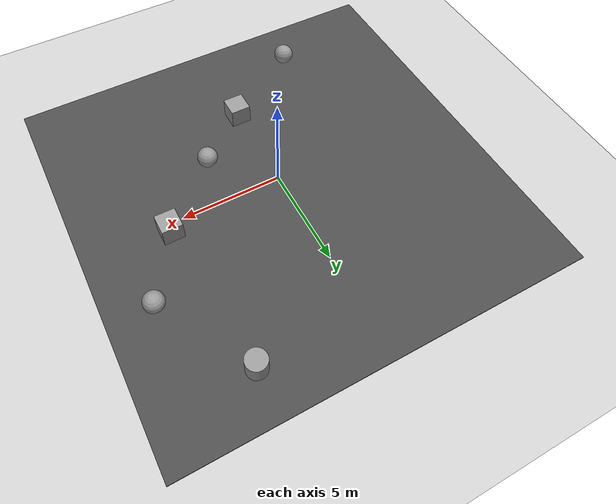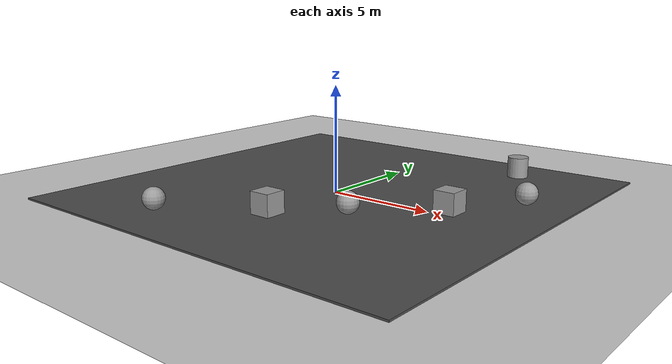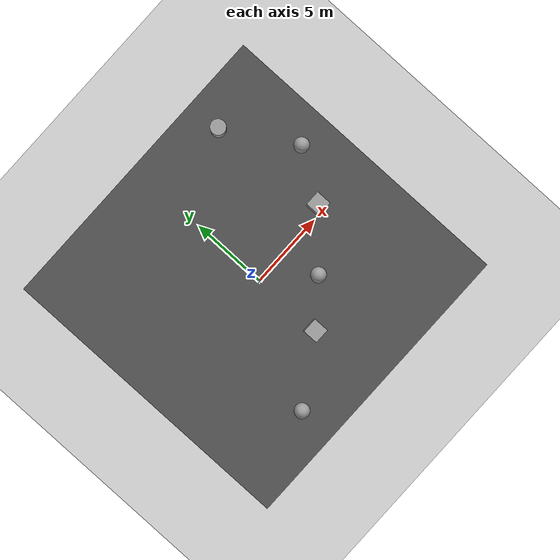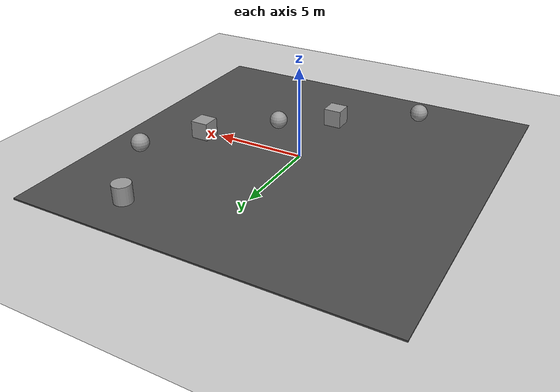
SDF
<sdf version="1.6">
 <world name="default">
  <model name="rad_zone_MPv">
   <static>true</static>
   <pose>5.000 4.000 2.000 0.000 0.000 0.000</pose>
   <frame name="radius"><pose>3.000 0.000 0.000 0.000 0.000 0.000</pose></frame>
  </model>
  <plugin name="gazebo_usar_core" filename="libgazebo_usar_core.so"><robots>Robot1;Robot2</robots></plugin>
  <light name="sun" type="directional">
   <pose>0 0 10 0 -0 0</pose>
   <diffuse>0.8 0.8 0.8 1</diffuse>
   <specular>0.2 0.2 0.2 1</specular>
   <attenuation>
    <range>1000</range>
    <constant>0.9</constant>
    <linear>0.01</linear>
    <quadratic>0.001</quadratic>
   </attenuation>
   <direction>-0.5 0.1 -0.9</direction>
  </light>
  <model name="ground_plane">
   <static>1</static>
   <link name="link">
    <collision name="collision">
     <geometry><plane><normal>0 0 1</normal><size>100 100</size></plane></geometry>
     <surface>
      <contact><collide_bitmask>65535</collide_bitmask></contact>
      <friction><ode><mu>100</mu><mu2>50</mu2></ode></friction>
     </surface>
    </collision>
    <visual name="visual">
     <cast_shadows>0</cast_shadows>
     <geometry><plane><normal>0 0 1</normal><size>100 100</size></plane></geometry>
     <material>
      <script><uri>file://media/materials/scripts/gazebo.material</uri><name>Gazebo/Grey</name></script>
     </material>
    </visual>
   </link>
  </model>
  <gravity>0 0 -9.8</gravity>
  <magnetic_field>6e-06 2.3e-05 -4.2e-05</magnetic_field>
  <atmosphere type="adiabatic"/>
  <physics name="default_physics" default="0" type="ode">
   <max_step_size>0.001</max_step_size>
   <real_time_factor>1</real_time_factor>
   <real_time_update_rate>1000</real_time_update_rate>
  </physics>
  <scene><ambient>0.4 0.4 0.4 1</ambient><background>0.7 0.7 0.7 1</background><shadows>1</shadows></scene>
  <audio><device>default</device></audio>
  <spherical_coordinates>
   <surface_model>EARTH_WGS84</surface_model>
   <latitude_deg>0</latitude_deg>
   <longitude_deg>0</longitude_deg>
   <elevation>0</elevation>
   <heading_deg>0</heading_deg>
  </spherical_coordinates>
  <model name="unit_sphere">
   <pose>7.78493 3.60879 0.55 0 -0 0</pose>
   <link name="link">
    <inertial>
     <mass>1</mass>
     <inertia><ixx>0.1</ixx><ixy>0</ixy><ixz>0</ixz><iyy>0.1</iyy><iyz>0</iyz><izz>0.1</izz></inertia>
    </inertial>
    <collision name="collision"><geometry><sphere><radius>0.5</radius></sphere></geometry></collision>
    <visual name="visual">
     <geometry><sphere><radius>0.5</radius></sphere></geometry>
     <material>
      <script><name>Gazebo/Grey</name><uri>file://media/materials/scripts/gazebo.material</uri></script>
     </material>
    </visual>
   </link>
  </model>
  <model name="unit_sphere_0">
   <pose>-4.12272 -7.1575 0.55 0 -0 0</pose>
   <link name="link">
    <inertial>
     <mass>1</mass>
     <inertia><ixx>0.1</ixx><ixy>0</ixy><ixz>0</ixz><iyy>0.1</iyy><iyz>0</iyz><izz>0.1</izz></inertia>
    </inertial>
    <collision name="collision"><geometry><sphere><radius>0.5</radius></sphere></geometry></collision>
    <visual name="visual">
     <geometry><sphere><radius>0.5</radius></sphere></geometry>
     <material>
      <script><name>Gazebo/Grey</name><uri>file://media/materials/scripts/gazebo.material</uri></script>
     </material>
    </visual>
   </link>
  </model>
  <model name="asphalt_plane">
   <static>1</static>
   <link name="link">
    <collision name="collision"><geometry><box><size>20 20 0.1</size></box></geometry></collision>
    <visual name="visual">
     <cast_shadows>0</cast_shadows>
     <geometry><box><size>20 20 0.1</size></box></geometry>
     <material>
      <script>
       <uri>model://asphalt_plane/materials/scripts</uri>
       <uri>model://asphalt_plane/materials/textures</uri>
       <name>vrc/asphalt</name>
      </script>
     </material>
    </visual>
   </link>
   <pose>-0.004774 0.351359 0 0 -0 0</pose>
  </model>
  <model name="unit_cylinder">
   <pose>5.17544 8.01984 0.54999 0 0 -3.8e-05</pose>
   <link name="link">
    <inertial>
     <mass>1</mass>
     <inertia><ixx>0.145833</ixx><ixy>0</ixy><ixz>0</ixz><iyy>0.145833</iyy><iyz>0</iyz><izz>0.125</izz></inertia>
    </inertial>
    <collision name="collision">
     <geometry><cylinder><radius>0.5</radius><length>1</length></cylinder></geometry>
    </collision>
    <visual name="visual">
     <geometry><cylinder><radius>0.5</radius><length>1</length></cylinder></geometry>
     <material>
      <script><name>Gazebo/Grey</name><uri>file://media/materials/scripts/gazebo.material</uri></script>
     </material>
    </visual>
   </link>
  </model>
  <model name="unit_box">
   <pose>0.018079 -4.50304 0.55 -0 -0 -0</pose>
   <link name="link">
    <inertial>
     <mass>1</mass>
     <inertia>
      <ixx>0.166667</ixx>
      <ixy>0</ixy>
      <ixz>0</ixz>
      <iyy>0.166667</iyy>
      <iyz>0</iyz>
      <izz>0.166667</izz>
     </inertia>
    </inertial>
    <collision name="collision"><geometry><box><size>1 1 1</size></box></geometry></collision>
    <visual name="visual">
     <geometry><box><size>1 1 1</size></box></geometry>
     <material>
      <script><name>Gazebo/Grey</name><uri>file://media/materials/scripts/gazebo.material</uri></script>
     </material>
    </visual>
   </link>
  </model>
  <model name="unit_sphere_1">
   <pose>2.64216 -2.40138 0.55 0 -0 0</pose>
   <link name="link">
    <inertial>
     <mass>1</mass>
     <inertia><ixx>0.1</ixx><ixy>0</ixy><ixz>0</ixz><iyy>0.1</iyy><iyz>0</iyz><izz>0.1</izz></inertia>
    </inertial>
    <collision name="collision"><geometry><sphere><radius>0.5</radius></sphere></geometry></collision>
    <visual name="visual">
     <geometry><sphere><radius>0.5</radius></sphere></geometry>
     <material>
      <script><name>Gazebo/Grey</name><uri>file://media/materials/scripts/gazebo.material</uri></script>
     </material>
    </visual>
   </link>
  </model>
  <model name="unit_box_0">
   <pose>5.79528 0.483326 0.55 -0 -0 -0</pose>
   <link name="link">
    <inertial>
     <mass>1</mass>
     <inertia>
      <ixx>0.166667</ixx>
      <ixy>0</ixy>
      <ixz>0</ixz>
      <iyy>0.166667</iyy>
      <iyz>0</iyz>
      <izz>0.166667</izz>
     </inertia>
    </inertial>
    <collision name="collision"><geometry><box><size>1 1 1</size></box></geometry></collision>
    <visual name="visual">
     <geometry><box><size>1 1 1</size></box></geometry>
     <material>
      <script><name>Gazebo/Grey</name><uri>file://media/materials/scripts/gazebo.material</uri></script>
     </material>
    </visual>
   </link>
  </model>
 </world>
</sdf>
